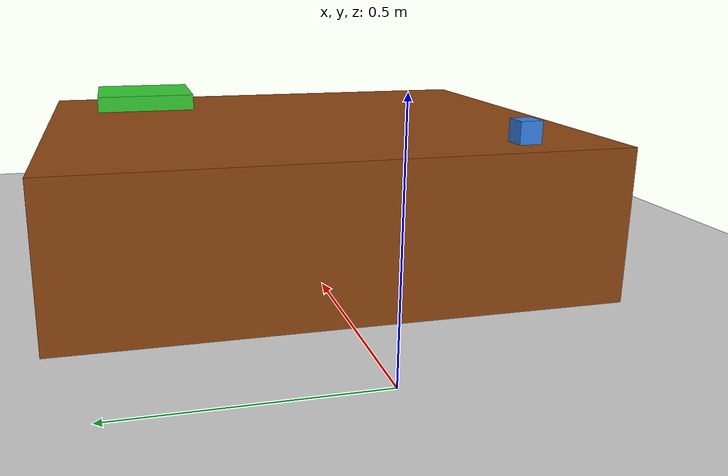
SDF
<?xml version="1.0" ?>
<sdf version="1.9">
  <world name="ur5_pick_place">

    <!-- Physics -->
    <physics name="default_physics" type="ode">
      <max_step_size>0.001</max_step_size>
      <real_time_factor>1.0</real_time_factor>
    </physics>

    <!-- Plugins -->
    <plugin filename="gz-sim-physics-system" name="gz::sim::systems::Physics"/>
    <plugin filename="gz-sim-sensors-system" name="gz::sim::systems::Sensors">
      <render_engine>ogre2</render_engine>
    </plugin>
    <plugin filename="gz-sim-scene-broadcaster-system" name="gz::sim::systems::SceneBroadcaster"/>
    <plugin filename="gz-sim-user-commands-system" name="gz::sim::systems::UserCommands"/>

    <!-- Sun / Lighting -->
    <light name="sun" type="directional">
      <cast_shadows>false</cast_shadows>
      <pose>0 0 10 0 0 0</pose>
      <diffuse>0.8 0.8 0.8 1</diffuse>
      <specular>0.2 0.2 0.2 1</specular>
      <direction>-0.5 0.1 -0.9</direction>
    </light>

    <!-- Ground Plane -->
    <model name="ground_plane">
      <static>true</static>
      <link name="link">
        <collision name="collision">
          <geometry>
            <plane>
              <normal>0 0 1</normal>
              <size>100 100</size>
            </plane>
          </geometry>
        </collision>
        <visual name="visual">
          <geometry>
            <plane>
              <normal>0 0 1</normal>
              <size>100 100</size>
            </plane>
          </geometry>
          <material>
            <ambient>0.8 0.8 0.8 1</ambient>
            <diffuse>0.8 0.8 0.8 1</diffuse>
            <specular>0.8 0.8 0.8 1</specular>
          </material>
        </visual>
      </link>
    </model>

    <model name="table">
      <static>true</static>
      <pose>0.75 0.0 0.17 0 0 0</pose>
      <link name="link">
        <collision name="collision">
          <geometry>
            <box>
              <size>1.0 1.2 0.34</size>
            </box>
          </geometry>
        </collision>
        <visual name="visual">
          <geometry>
            <box>
              <size>1.0 1.2 0.34</size>
            </box>
          </geometry>
          <material>
            <ambient>0.55 0.27 0.07 1</ambient>
            <diffuse>0.55 0.27 0.07 1</diffuse>
            <specular>0.1 0.1 0.1 1</specular>
          </material>
        </visual>
      </link>
    </model>

    <!--
      BLOCK: BOX 0.05 x 0.05 x 0.05, center at (0.35, -0.4, 0.365)
      Matches scene_publisher_node.py block dimensions and pose exactly.
    -->
    <model name="block">
      <static>false</static>
      <pose>0.35 -0.40 0.365 0 0 0</pose>
      <link name="link">
        <inertial>
          <mass>0.1</mass>
          <inertia>
            <ixx>0.00004167</ixx><ixy>0</ixy><ixz>0</ixz>
            <iyy>0.00004167</iyy><iyz>0</iyz>
            <izz>0.00004167</izz>
          </inertia>
        </inertial>
        <collision name="collision">
          <geometry>
            <box>
              <size>0.05 0.05 0.05</size>
            </box>
          </geometry>
          <surface>
            <friction>
              <ode>
                <mu>0.8</mu>
                <mu2>0.8</mu2>
              </ode>
            </friction>
          </surface>
        </collision>
        <visual name="visual">
          <geometry>
            <box>
              <size>0.05 0.05 0.05</size>
            </box>
          </geometry>
          <material>
            <ambient>0.2 0.5 0.9 1</ambient>
            <diffuse>0.2 0.5 0.9 1</diffuse>
            <specular>0.3 0.3 0.3 1</specular>
          </material>
        </visual>
      </link>
    </model>

    <!--
      TRAY: BOX 0.25 x 0.25 x 0.04, center at (1.11, 0.36, 0.36)
      Matches scene_publisher_node.py tray dimensions and pose exactly.
    -->
    <model name="tray">
      <static>true</static>
      <pose>1.11 0.36 0.36 0 0 0</pose>
      <link name="link">
        <collision name="collision">
          <geometry>
            <box>
              <size>0.25 0.25 0.04</size>
            </box>
          </geometry>
        </collision>
        <visual name="visual">
          <geometry>
            <box>
              <size>0.25 0.25 0.04</size>
            </box>
          </geometry>
          <material>
            <ambient>0.2 0.8 0.2 1</ambient>
            <diffuse>0.2 0.8 0.2 1</diffuse>
            <specular>0.2 0.2 0.2 1</specular>
          </material>
        </visual>
      </link>
    </model>

  </world>
</sdf>
